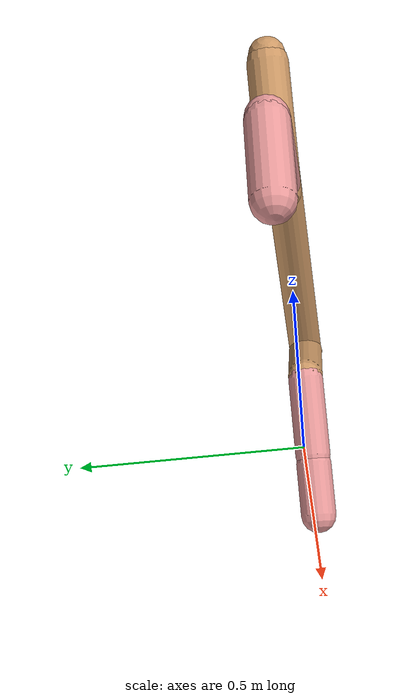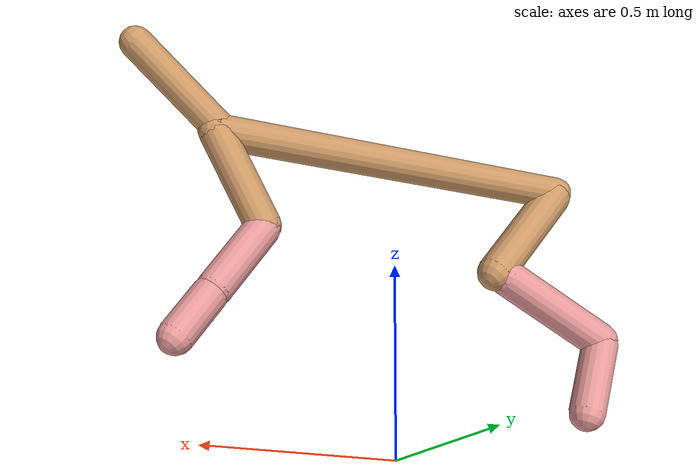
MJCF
<mujoco model="cheetah">
  <compiler angle="radian" coordinate="local" inertiafromgeom="true" settotalmass="14" />
  <default>
    <joint armature=".1" damping=".01" limited="true" solimplimit="0 .8 .03" solreflimit=".02 1" stiffness="8" />
    <geom conaffinity="0" condim="3" contype="1" friction="0.8 .1 .1" rgba="0.8 0.6 .4 1" solimp="0.0 0.8 0.01" solref="0.02 1" />
    <motor ctrllimited="true" ctrlrange="-1 1" />
  </default>
  <size nstack="300000" nuser_geom="1" />
  <option gravity="0 0 -9.81" timestep="0.01" />
  <worldbody>
    <body name="torso" pos="0.0 0.0 0.7835778519812734">
      <joint armature="0" axis="1 0 0" damping="0" limited="false" name="ignorex" pos="0 0 0" stiffness="0" type="slide" />
      <joint armature="0" axis="0 0 1" damping="0" limited="false" name="ignorez" pos="0 0 0" stiffness="0" type="slide" />
      <joint armature="0" axis="0 1 0" damping="0" limited="false" name="ignorey" pos="0 0 0" stiffness="0" type="hinge" />
      <geom fromto="-0.5 0.0 0.0 0.4939068672805787 0.0 0.0" name="torso" size="0.044537691337354086" type="capsule" />
      <geom axisangle="0 1 0 .87" name="head" pos="0.5939068672805786 0.0 0.1" size="0.04164631959245371 0.15" type="capsule" />

      <body name="bthigh" pos="-.5 0 0">
        <joint axis="0 1 0" damping="6" name="bthigh" pos="0 0 0" range="-.52 1.05" stiffness="240" type="hinge" />
        <geom axisangle="0 1 0 -3.8" name="bthigh" pos="0.106261826931902 0.0 -0.13814037501147258" size="0.04983133941104788 0.15527015977735986" type="capsule" />
        <body name="bshin" pos="0.172523653863804 0.0 -0.26628075002294516">
          <joint axis="0 1 0" damping="4.5" name="bshin" pos="0 0 0" range="-.785 .785" stiffness="180" type="hinge" />
          <geom axisangle="0 1 0 -2.03" name="bshin" pos="-0.14950266568356999 0.0 -0.07475133284178499" rgba="0.9 0.6 0.6 1" size="0.04983133941104788 0.16062430321795848" type="capsule" />
          <body name="bfoot" pos="-0.29900533136713997 0.0 -0.14950266568356999">
            <joint axis="0 1 0" damping="3" name="bfoot" pos="0 0 0" range="-.4 .785" stiffness="120" type="hinge" />
            <geom axisangle="0 1 0 -.27" name="bfoot" pos="0.03196720688824481 0.0 -0.10336063560532488" rgba="0.9 0.6 0.6 1" size="0.04983133941104788 0.10065789668325399" type="capsule" />
            <inertial mass="10" />
          </body>
        </body>
      </body>
      <body name="fthigh" pos="0.49390686728057864 0.0 0.0">
        <joint axis="0 1 0" damping="4.5" name="fthigh" pos="0 0 0" range="-1.5 0.8" stiffness="180" type="hinge" />
        <geom axisangle="0 1 0 .52" name="fthigh" pos="-0.06846664777630077 0.0 -0.11737139618794415" size="0.04560801293727767 0.12995685573088" type="capsule" />
        <body name="fshin" pos="-0.13693329555260153 0.0 -0.2347427923758883">
          <joint axis="0 1 0" damping="3" name="fshin" pos="0 0 0" range="-1.2 1.1" stiffness="120" type="hinge" />
          <geom axisangle="0 1 0 -.6" name="fshin" pos="0.06357997281430927 0.0 -0.08803380851212052" rgba="0.9 0.6 0.6 1" size="0.04560801293727767 0.10357463689829534" type="capsule" />
          <body name="ffoot" pos="0.12715994562861854 0.0 -0.17606761702424104">
            <joint axis="0 1 0" damping="1.5" name="ffoot" pos="0 0 0" range="-3.1 -0.3" stiffness="60" type="hinge" />
            <geom axisangle="0 1 0 -.6" name="ffoot" pos="0.04413389296579536 0.0 -0.06865272239123724" rgba="0.9 0.6 0.6 1" size="0.04560801293727767 0.0683983451215158" type="capsule" />
            <inertial mass="10" />
          </body>
        </body>
      </body>
    </body>
  </worldbody>
  <actuator>
    <motor gear="120" joint="bthigh" name="bthigh" />
    <motor gear="90" joint="bshin" name="bshin" />
    <motor gear="60" joint="bfoot" name="bfoot" />
    <motor gear="120" joint="fthigh" name="fthigh" />
    <motor gear="60" joint="fshin" name="fshin" />
    <motor gear="30" joint="ffoot" name="ffoot" />
  </actuator>
</mujoco>
